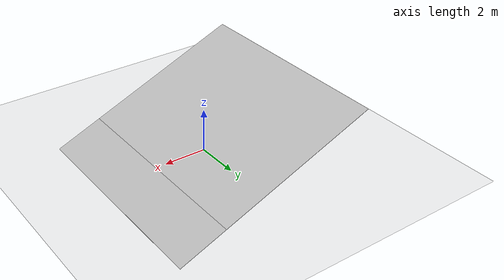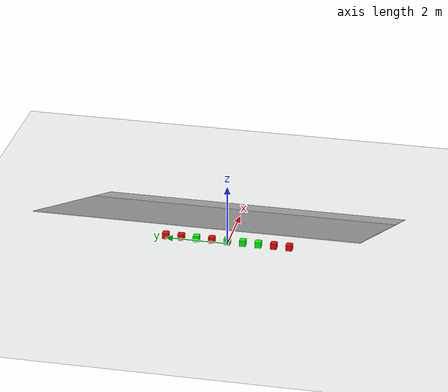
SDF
<?xml version="1.0" ?>
<!-- |    This document was autogenerated by xacro from xacro/friction_test.xacro      | -->
<!-- |    EDITING THIS FILE BY HAND IS NOT RECOMMENDED                                 | -->
<sdf version="1.7">
  <world name="friction_test">
    <plugin filename="gz-sim-physics-system" name="gz::sim::systems::Physics"/>
    <plugin filename="gz-sim-user-commands-system" name="gz::sim::systems::UserCommands"/>
    <plugin filename="gz-sim-scene-broadcaster-system" name="gz::sim::systems::SceneBroadcaster"/>
    <light name="sun" type="directional">
      <cast_shadows>1</cast_shadows>
      <pose>0 0 10 0 -0 0</pose>
      <diffuse>0.8 0.8 0.8 1</diffuse>
      <specular>0.2 0.2 0.2 1</specular>
      <attenuation>
        <range>1000</range>
        <constant>0.9</constant>
        <linear>0.01</linear>
        <quadratic>0.001</quadratic>
      </attenuation>
      <direction>-0.5 0.1 -0.9</direction>
      <spot>
        <inner_angle>0</inner_angle>
        <outer_angle>0</outer_angle>
        <falloff>0</falloff>
      </spot>
    </light>
    <model name="ground_plane">
      <static>1</static>
      <pose>0 0 0 0 0 0</pose>
      <link name="link">
        <collision name="collision">
          <geometry>
            <plane>
              <normal>0 0 1</normal>
              <size>100 100</size>
            </plane>
          </geometry>
          <surface>
            <friction>
              <ode/>
            </friction>
            <contact/>
          </surface>
        </collision>
        <visual name="visual">
          <geometry>
            <plane>
              <normal>0 0 1</normal>
              <size>100 100</size>
            </plane>
          </geometry>
          <material>
            <ambient>0.8 0.8 0.8 1</ambient>
            <diffuse>0.8 0.8 0.8 1</diffuse>
            <specular>0.8 0.8 0.8 1</specular>
          </material>
        </visual>
      </link>
    </model>
    <model name="ramp">
      <pose>0 0 1 0 0.39269908169872414 0 </pose>
      <static>1</static>
      <link name="ramp_link">
        <pose>0 0 0 0 0 0</pose>
        <collision name="ramp_collision">
          <pose>0 0 0 0 0 0</pose>
          <geometry>
            <box>
              <size>10 10 0.02</size>
            </box>
          </geometry>
          <surface>
            <friction>
              <ode/>
            </friction>
          </surface>
        </collision>
        <visual name="ramp_visual">
          <pose>0 0 0 0 0 0</pose>
          <geometry>
            <box>
              <size>10 10 0.02</size>
            </box>
          </geometry>
          <material>
            <ambient> .3 .3 .3  1.0</ambient>
            <diffuse> .7 .7 .7  1.0</diffuse>
            <specular> 0.01 0.01 0.01 1.000000</specular>
          </material>
        </visual>
        <gravity>0</gravity>
        <velocity_decay/>
      </link>
    </model>
    <model name="cube">
      <pose relative_to="ramp">0 2.0 0.11 0 0 0</pose>
      <link name="cube_link">
        <pose>0 0 0 0 0 0</pose>
        <inertial>
          <pose>0 0 0 0 0 0</pose>
          <mass>1</mass>
          <inertia>
            <ixx>0.03333333333333333</ixx>
            <ixy>0</ixy>
            <ixz>0</ixz>
            <iyy>0.03333333333333333</iyy>
            <iyz>0</iyz>
            <izz>0.03333333333333333</izz>
          </inertia>
        </inertial>
        <collision name="cube_collision">
          <pose relative_to="cube_link">0 0 0 0 0 0</pose>
          <geometry>
            <box>
              <size>0.2 0.2 0.2</size>
            </box>
          </geometry>
          <surface>
            <contact>
              <ode>
                <kp>1e+06</kp>
                <kd>1</kd>
              </ode>
            </contact>
            <friction/>
          </surface>
        </collision>
        <visual name="cube_visual">
          <pose>0 0 0 0 0 0</pose>
          <geometry>
            <box>
              <size>0.2 0.2 0.2</size>
            </box>
          </geometry>
          <material>
            <ambient>1 0 0 1</ambient>
            <diffuse>1 0 0 1</diffuse>
            <specular>0.1 0.1 0.1 1</specular>
          </material>
        </visual>
        <gravity>1</gravity>
        <velocity_decay/>
      </link>
    </model>
    <model name="cube_mu">
      <pose relative_to="ramp">0 1.5 0.11 0 0 0</pose>
      <link name="cube_mu_link">
        <pose>0 0 0 0 0 0</pose>
        <inertial>
          <pose>0 0 0 0 0 0</pose>
          <mass>1</mass>
          <inertia>
            <ixx>0.03333333333333333</ixx>
            <ixy>0</ixy>
            <ixz>0</ixz>
            <iyy>0.03333333333333333</iyy>
            <iyz>0</iyz>
            <izz>0.03333333333333333</izz>
          </inertia>
        </inertial>
        <collision name="cube_mu_collision">
          <pose relative_to="cube_mu_link">0 0 0 0 0 0</pose>
          <geometry>
            <box>
              <size>0.2 0.2 0.2</size>
            </box>
          </geometry>
          <surface>
            <contact>
              <ode>
                <kp>1e+06</kp>
                <kd>1</kd>
              </ode>
            </contact>
            <friction>
              <ode>
                <mu>1</mu>
                <mu2>0</mu2>
              </ode>
            </friction>
          </surface>
        </collision>
        <visual name="cube_mu_visual">
          <pose>0 0 0 0 0 0</pose>
          <geometry>
            <box>
              <size>0.2 0.2 0.2</size>
            </box>
          </geometry>
          <material>
            <ambient>1 0 0 1</ambient>
            <diffuse>1 0 0 1</diffuse>
            <specular>0.1 0.1 0.1 1</specular>
          </material>
        </visual>
        <gravity>1</gravity>
        <velocity_decay/>
      </link>
    </model>
    <model name="cube_mu2">
      <pose relative_to="ramp">0 1.0 0.11 0 0 0</pose>
      <link name="cube_mu2_link">
        <pose>0 0 0 0 0 0</pose>
        <inertial>
          <pose>0 0 0 0 0 0</pose>
          <mass>1</mass>
          <inertia>
            <ixx>0.03333333333333333</ixx>
            <ixy>0</ixy>
            <ixz>0</ixz>
            <iyy>0.03333333333333333</iyy>
            <iyz>0</iyz>
            <izz>0.03333333333333333</izz>
          </inertia>
        </inertial>
        <collision name="cube_mu2_collision">
          <pose relative_to="cube_mu2_link">0 0 0 0 0 0</pose>
          <geometry>
            <box>
              <size>0.2 0.2 0.2</size>
            </box>
          </geometry>
          <surface>
            <contact>
              <ode>
                <kp>1e+06</kp>
                <kd>1</kd>
              </ode>
            </contact>
            <friction>
              <ode>
                <mu>0</mu>
                <mu2>1</mu2>
              </ode>
            </friction>
          </surface>
        </collision>
        <visual name="cube_mu2_visual">
          <pose>0 0 0 0 0 0</pose>
          <geometry>
            <box>
              <size>0.2 0.2 0.2</size>
            </box>
          </geometry>
          <material>
            <ambient>0 1 0 1</ambient>
            <diffuse>0 1 0 1</diffuse>
            <specular>0.1 0.1 0.1 1</specular>
          </material>
        </visual>
        <gravity>1</gravity>
        <velocity_decay/>
      </link>
    </model>
    <model name="cube_mu_fdir_x">
      <pose relative_to="ramp">0 0.5 0.11 0 0 0</pose>
      <link name="cube_mu_fdir_x_link">
        <pose>0 0 0 0 0 0</pose>
        <inertial>
          <pose>0 0 0 0 0 0</pose>
          <mass>1</mass>
          <inertia>
            <ixx>0.03333333333333333</ixx>
            <ixy>0</ixy>
            <ixz>0</ixz>
            <iyy>0.03333333333333333</iyy>
            <iyz>0</iyz>
            <izz>0.03333333333333333</izz>
          </inertia>
        </inertial>
        <collision name="cube_mu_fdir_x_collision">
          <pose relative_to="cube_mu_fdir_x_link">0 0 0 0 0 0</pose>
          <geometry>
            <box>
              <size>0.2 0.2 0.2</size>
            </box>
          </geometry>
          <surface>
            <contact>
              <ode>
                <kp>1e+06</kp>
                <kd>1</kd>
              </ode>
            </contact>
            <friction>
              <ode>
                <mu>1</mu>
                <mu2>0</mu2>
                <fdir1>1 0 0</fdir1>
              </ode>
            </friction>
          </surface>
        </collision>
        <visual name="cube_mu_fdir_x_visual">
          <pose>0 0 0 0 0 0</pose>
          <geometry>
            <box>
              <size>0.2 0.2 0.2</size>
            </box>
          </geometry>
          <material>
            <ambient>1 0 0 1</ambient>
            <diffuse>1 0 0 1</diffuse>
            <specular>0.1 0.1 0.1 1</specular>
          </material>
        </visual>
        <gravity>1</gravity>
        <velocity_decay/>
      </link>
    </model>
    <model name="cube_mu_fdir_y">
      <pose relative_to="ramp">0 0 0.11 0 0 0</pose>
      <link name="cube_mu_fdir_y_link">
        <pose>0 0 0 0 0 0</pose>
        <inertial>
          <pose>0 0 0 0 0 0</pose>
          <mass>1</mass>
          <inertia>
            <ixx>0.03333333333333333</ixx>
            <ixy>0</ixy>
            <ixz>0</ixz>
            <iyy>0.03333333333333333</iyy>
            <iyz>0</iyz>
            <izz>0.03333333333333333</izz>
          </inertia>
        </inertial>
        <collision name="cube_mu_fdir_y_collision">
          <pose relative_to="cube_mu_fdir_y_link">0 0 0 0 0 0</pose>
          <geometry>
            <box>
              <size>0.2 0.2 0.2</size>
            </box>
          </geometry>
          <surface>
            <contact>
              <ode>
                <kp>1e+06</kp>
                <kd>1</kd>
              </ode>
            </contact>
            <friction>
              <ode>
                <mu>1</mu>
                <mu2>0</mu2>
                <fdir1>0 1 0</fdir1>
              </ode>
            </friction>
          </surface>
        </collision>
        <visual name="cube_mu_fdir_y_visual">
          <pose>0 0 0 0 0 0</pose>
          <geometry>
            <box>
              <size>0.2 0.2 0.2</size>
            </box>
          </geometry>
          <material>
            <ambient>0 1 0 1</ambient>
            <diffuse>0 1 0 1</diffuse>
            <specular>0.1 0.1 0.1 1</specular>
          </material>
        </visual>
        <gravity>1</gravity>
        <velocity_decay/>
      </link>
    </model>
    <model name="cube_mu_fdir_z">
      <pose relative_to="ramp">0 -0.5 0.11 0 0 0</pose>
      <link name="cube_mu_fdir_z_link">
        <pose>0 0 0 0 0 0</pose>
        <inertial>
          <pose>0 0 0 0 0 0</pose>
          <mass>1</mass>
          <inertia>
            <ixx>0.03333333333333333</ixx>
            <ixy>0</ixy>
            <ixz>0</ixz>
            <iyy>0.03333333333333333</iyy>
            <iyz>0</iyz>
            <izz>0.03333333333333333</izz>
          </inertia>
        </inertial>
        <collision name="cube_mu_fdir_z_collision">
          <pose relative_to="cube_mu_fdir_z_link">0 0 0 0 0 0</pose>
          <geometry>
            <box>
              <size>0.2 0.2 0.2</size>
            </box>
          </geometry>
          <surface>
            <contact>
              <ode>
                <kp>1e+06</kp>
                <kd>1</kd>
              </ode>
            </contact>
            <friction>
              <ode>
                <mu>1</mu>
                <mu2>0</mu2>
                <fdir1>0 0 1</fdir1>
              </ode>
            </friction>
          </surface>
        </collision>
        <visual name="cube_mu_fdir_z_visual">
          <pose>0 0 0 0 0 0</pose>
          <geometry>
            <box>
              <size>0.2 0.2 0.2</size>
            </box>
          </geometry>
          <material>
            <ambient>0 1 0 1</ambient>
            <diffuse>0 1 0 1</diffuse>
            <specular>0.1 0.1 0.1 1</specular>
          </material>
        </visual>
        <gravity>1</gravity>
        <velocity_decay/>
      </link>
    </model>
    <model name="cube_mu_fdir_rot">
      <pose relative_to="ramp">0 -1.0 0.11 0 1.5707963267948966 0</pose>
      <link name="cube_mu_fdir_rot_link">
        <pose>0 0 0 0 0 0</pose>
        <inertial>
          <pose>0 0 0 0 0 0</pose>
          <mass>1</mass>
          <inertia>
            <ixx>0.03333333333333333</ixx>
            <ixy>0</ixy>
            <ixz>0</ixz>
            <iyy>0.03333333333333333</iyy>
            <iyz>0</iyz>
            <izz>0.03333333333333333</izz>
          </inertia>
        </inertial>
        <collision name="cube_mu_fdir_rot_collision">
          <pose relative_to="cube_mu_fdir_rot_link">0 0 0 0 0 0</pose>
          <geometry>
            <box>
              <size>0.2 0.2 0.2</size>
            </box>
          </geometry>
          <surface>
            <contact>
              <ode>
                <kp>1e+06</kp>
                <kd>1</kd>
              </ode>
            </contact>
            <friction>
              <ode>
                <mu>0</mu>
                <mu2>1</mu2>
                <fdir1>1 0 0</fdir1>
              </ode>
            </friction>
          </surface>
        </collision>
        <visual name="cube_mu_fdir_rot_visual">
          <pose>0 0 0 0 0 0</pose>
          <geometry>
            <box>
              <size>0.2 0.2 0.2</size>
            </box>
          </geometry>
          <material>
            <ambient>0 1 0 1</ambient>
            <diffuse>0 1 0 1</diffuse>
            <specular>0.1 0.1 0.1 1</specular>
          </material>
        </visual>
        <gravity>1</gravity>
        <velocity_decay/>
      </link>
    </model>
    <model name="cube_mu_x_rot">
      <pose relative_to="ramp">0 -1.5 0.11 1.5707963267948966 0 0</pose>
      <link name="cube_mu_x_rot_link">
        <pose>0 0 0 0 0 0</pose>
        <inertial>
          <pose>0 0 0 0 0 0</pose>
          <mass>1</mass>
          <inertia>
            <ixx>0.03333333333333333</ixx>
            <ixy>0</ixy>
            <ixz>0</ixz>
            <iyy>0.03333333333333333</iyy>
            <iyz>0</iyz>
            <izz>0.03333333333333333</izz>
          </inertia>
        </inertial>
        <collision name="cube_mu_x_rot_collision">
          <pose relative_to="cube_mu_x_rot_link">0 0 0 0 0 0</pose>
          <geometry>
            <box>
              <size>0.2 0.2 0.2</size>
            </box>
          </geometry>
          <surface>
            <contact>
              <ode>
                <kp>1e+06</kp>
                <kd>1</kd>
              </ode>
            </contact>
            <friction>
              <ode>
                <mu>1</mu>
              </ode>
            </friction>
          </surface>
        </collision>
        <visual name="cube_mu_x_rot_visual">
          <pose>0 0 0 0 0 0</pose>
          <geometry>
            <box>
              <size>0.2 0.2 0.2</size>
            </box>
          </geometry>
          <material>
            <ambient>1 0 0 1</ambient>
            <diffuse>1 0 0 1</diffuse>
            <specular>0.1 0.1 0.1 1</specular>
          </material>
        </visual>
        <gravity>1</gravity>
        <velocity_decay/>
      </link>
    </model>
    <model name="cube_mu_xy_rot">
      <pose relative_to="ramp">0 -2.0 0.11 1.5707963267948966 1.5707963267948966 0</pose>
      <link name="cube_mu_xy_rot_link">
        <pose>0 0 0 0 0 0</pose>
        <inertial>
          <pose>0 0 0 0 0 0</pose>
          <mass>1</mass>
          <inertia>
            <ixx>0.03333333333333333</ixx>
            <ixy>0</ixy>
            <ixz>0</ixz>
            <iyy>0.03333333333333333</iyy>
            <iyz>0</iyz>
            <izz>0.03333333333333333</izz>
          </inertia>
        </inertial>
        <collision name="cube_mu_xy_rot_collision">
          <pose relative_to="cube_mu_xy_rot_link">0 0 0 0 0 0</pose>
          <geometry>
            <box>
              <size>0.2 0.2 0.2</size>
            </box>
          </geometry>
          <surface>
            <contact>
              <ode>
                <kp>1e+06</kp>
                <kd>1</kd>
              </ode>
            </contact>
            <friction>
              <ode>
                <mu>1</mu>
              </ode>
            </friction>
          </surface>
        </collision>
        <visual name="cube_mu_xy_rot_visual">
          <pose>0 0 0 0 0 0</pose>
          <geometry>
            <box>
              <size>0.2 0.2 0.2</size>
            </box>
          </geometry>
          <material>
            <ambient>1 0 0 1</ambient>
            <diffuse>1 0 0 1</diffuse>
            <specular>0.1 0.1 0.1 1</specular>
          </material>
        </visual>
        <gravity>1</gravity>
        <velocity_decay/>
      </link>
    </model>
  </world>
</sdf>
